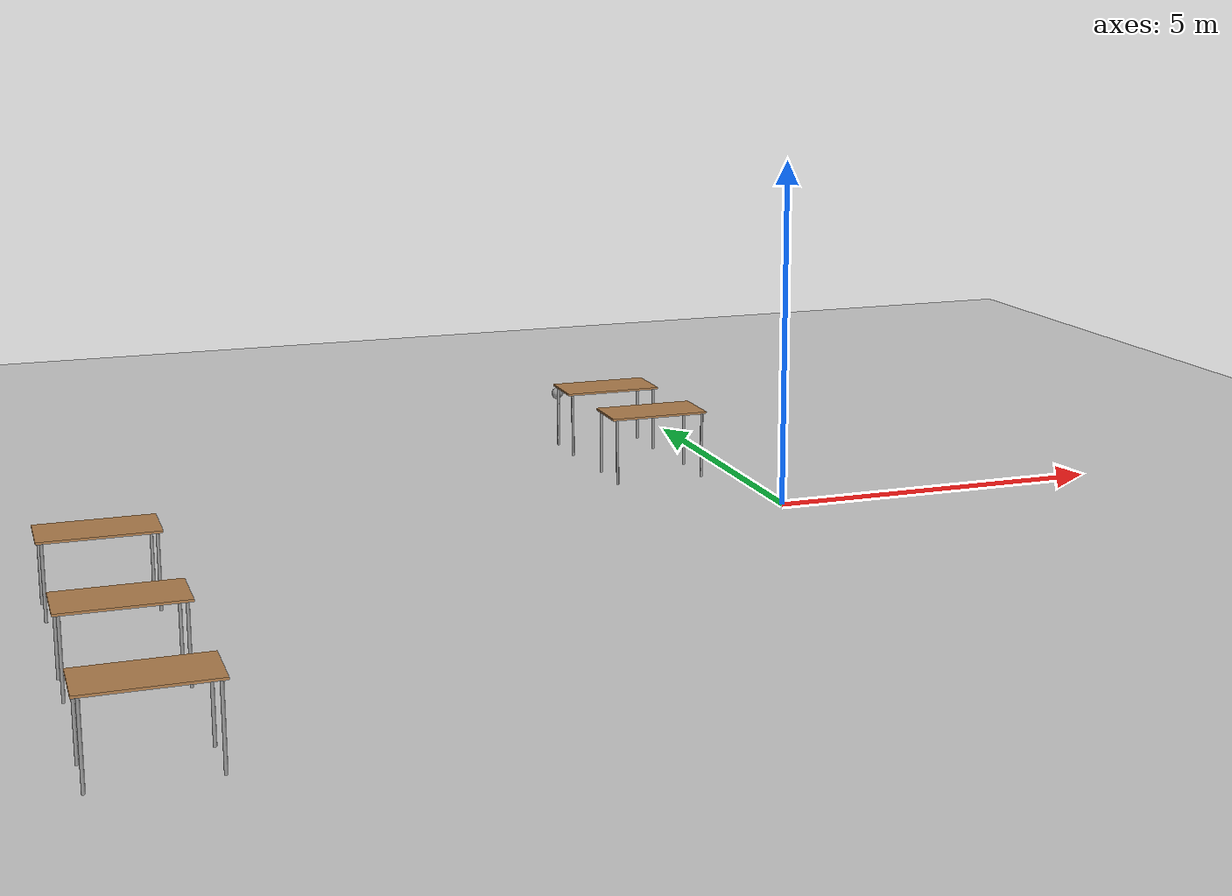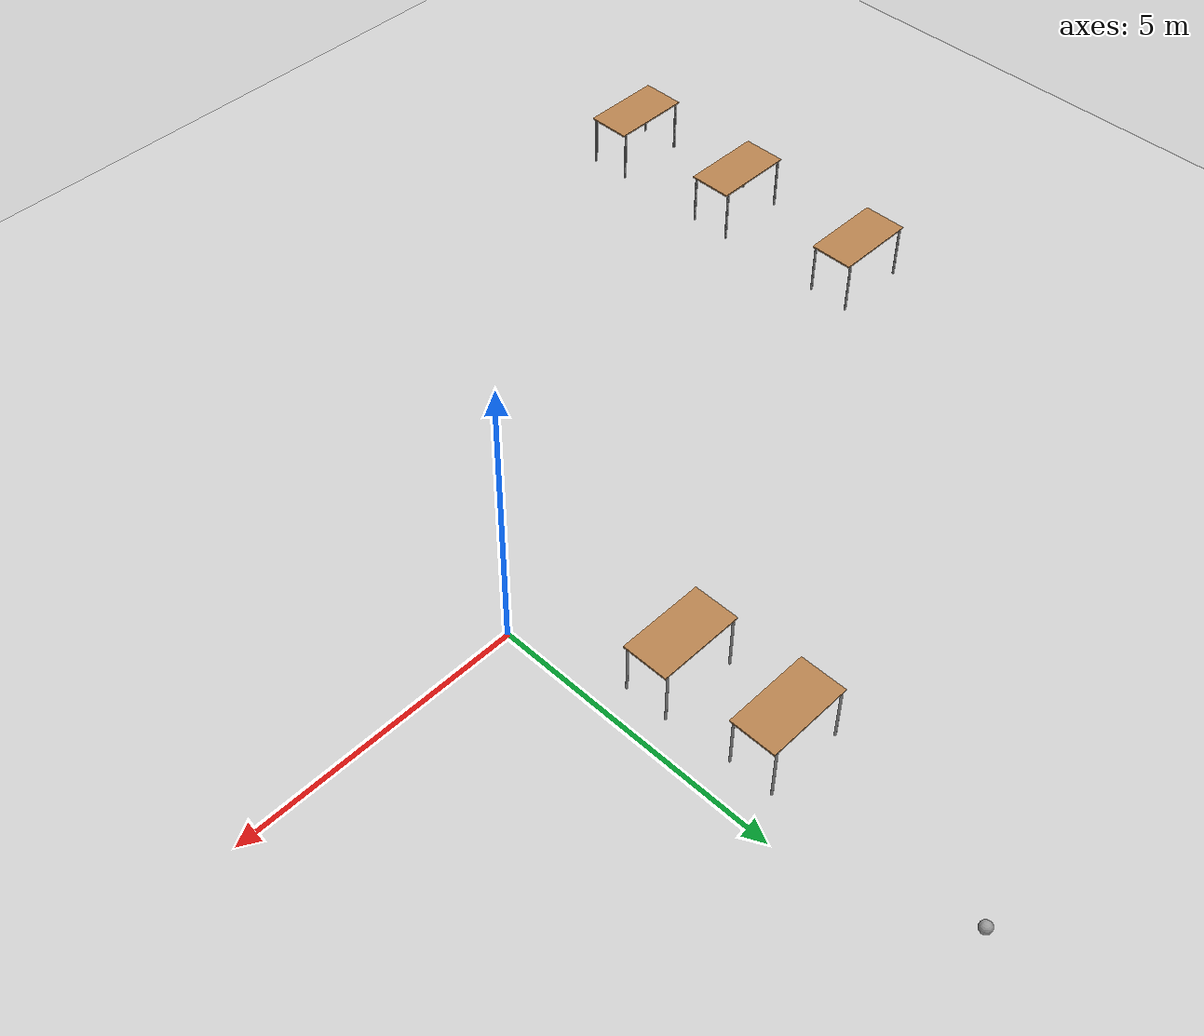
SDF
<sdf version="1.6">
 <world name="default">
  <model name="ground_plane">
   <static>1</static>
   <link name="link">
    <collision name="collision">
     <geometry><plane><normal>0 0 1</normal><size>100 100</size></plane></geometry>
     <surface><friction><ode><mu>100</mu><mu2>50</mu2></ode></friction></surface>
    </collision>
    <visual name="visual">
     <cast_shadows>0</cast_shadows>
     <geometry><plane><normal>0 0 1</normal><size>100 100</size></plane></geometry>
     <material>
      <script><uri>file://media/materials/scripts/gazebo.material</uri><name>Gazebo/Grey</name></script>
     </material>
    </visual>
   </link>
  </model>
  <model name="table_clone_0">
   <static>1</static>
   <link name="link">
    <collision name="surface">
     <pose>0 0 1 0 -0 0</pose>
     <geometry><box><size>1.5 0.8 0.03</size></box></geometry>
     <surface><friction><ode><mu>0.6</mu><mu2>0.6</mu2></ode></friction></surface>
    </collision>
    <visual name="visual1">
     <pose>0 0 1 0 -0 0</pose>
     <geometry><box><size>1.5 0.8 0.03</size></box></geometry>
     <material>
      <script><uri>file://media/materials/scripts/gazebo.material</uri><name>Gazebo/Wood</name></script>
     </material>
    </visual>
    <collision name="front_left_leg">
     <pose>0.68 0.38 0.5 0 -0 0</pose>
     <geometry><cylinder><radius>0.02</radius><length>1</length></cylinder></geometry>
    </collision>
    <visual name="front_left_leg">
     <pose>0.68 0.38 0.5 0 -0 0</pose>
     <geometry><cylinder><radius>0.02</radius><length>1</length></cylinder></geometry>
     <material>
      <script><uri>file://media/materials/scripts/gazebo.material</uri><name>Gazebo/Grey</name></script>
     </material>
    </visual>
    <collision name="front_right_leg">
     <pose>0.68 -0.38 0.5 0 -0 0</pose>
     <geometry><cylinder><radius>0.02</radius><length>1</length></cylinder></geometry>
    </collision>
    <visual name="front_right_leg">
     <pose>0.68 -0.38 0.5 0 -0 0</pose>
     <geometry><cylinder><radius>0.02</radius><length>1</length></cylinder></geometry>
     <material>
      <script><uri>file://media/materials/scripts/gazebo.material</uri><name>Gazebo/Grey</name></script>
     </material>
    </visual>
    <collision name="back_right_leg">
     <pose>-0.68 -0.38 0.5 0 -0 0</pose>
     <geometry><cylinder><radius>0.02</radius><length>1</length></cylinder></geometry>
    </collision>
    <visual name="back_right_leg">
     <pose>-0.68 -0.38 0.5 0 -0 0</pose>
     <geometry><cylinder><radius>0.02</radius><length>1</length></cylinder></geometry>
     <material>
      <script><uri>file://media/materials/scripts/gazebo.material</uri><name>Gazebo/Grey</name></script>
     </material>
    </visual>
    <collision name="back_left_leg">
     <pose>-0.68 0.38 0.5 0 -0 0</pose>
     <geometry><cylinder><radius>0.02</radius><length>1</length></cylinder></geometry>
    </collision>
    <visual name="back_left_leg">
     <pose>-0.68 0.38 0.5 0 -0 0</pose>
     <geometry><cylinder><radius>0.02</radius><length>1</length></cylinder></geometry>
     <material>
      <script><uri>file://media/materials/scripts/gazebo.material</uri><name>Gazebo/Grey</name></script>
     </material>
    </visual>
   </link>
   <pose>-1.31169 4.15802 0 0 -0 0</pose>
  </model>
  <model name="table_clone_1">
   <static>1</static>
   <link name="link">
    <collision name="surface">
     <pose>0 0 1 0 -0 0</pose>
     <geometry><box><size>1.5 0.8 0.03</size></box></geometry>
     <surface><friction><ode><mu>0.6</mu><mu2>0.6</mu2></ode></friction></surface>
    </collision>
    <visual name="visual1">
     <pose>0 0 1 0 -0 0</pose>
     <geometry><box><size>1.5 0.8 0.03</size></box></geometry>
     <material>
      <script><uri>file://media/materials/scripts/gazebo.material</uri><name>Gazebo/Wood</name></script>
     </material>
    </visual>
    <collision name="front_left_leg">
     <pose>0.68 0.38 0.5 0 -0 0</pose>
     <geometry><cylinder><radius>0.02</radius><length>1</length></cylinder></geometry>
    </collision>
    <visual name="front_left_leg">
     <pose>0.68 0.38 0.5 0 -0 0</pose>
     <geometry><cylinder><radius>0.02</radius><length>1</length></cylinder></geometry>
     <material>
      <script><uri>file://media/materials/scripts/gazebo.material</uri><name>Gazebo/Grey</name></script>
     </material>
    </visual>
    <collision name="front_right_leg">
     <pose>0.68 -0.38 0.5 0 -0 0</pose>
     <geometry><cylinder><radius>0.02</radius><length>1</length></cylinder></geometry>
    </collision>
    <visual name="front_right_leg">
     <pose>0.68 -0.38 0.5 0 -0 0</pose>
     <geometry><cylinder><radius>0.02</radius><length>1</length></cylinder></geometry>
     <material>
      <script><uri>file://media/materials/scripts/gazebo.material</uri><name>Gazebo/Grey</name></script>
     </material>
    </visual>
    <collision name="back_right_leg">
     <pose>-0.68 -0.38 0.5 0 -0 0</pose>
     <geometry><cylinder><radius>0.02</radius><length>1</length></cylinder></geometry>
    </collision>
    <visual name="back_right_leg">
     <pose>-0.68 -0.38 0.5 0 -0 0</pose>
     <geometry><cylinder><radius>0.02</radius><length>1</length></cylinder></geometry>
     <material>
      <script><uri>file://media/materials/scripts/gazebo.material</uri><name>Gazebo/Grey</name></script>
     </material>
    </visual>
    <collision name="back_left_leg">
     <pose>-0.68 0.38 0.5 0 -0 0</pose>
     <geometry><cylinder><radius>0.02</radius><length>1</length></cylinder></geometry>
    </collision>
    <visual name="back_left_leg">
     <pose>-0.68 0.38 0.5 0 -0 0</pose>
     <geometry><cylinder><radius>0.02</radius><length>1</length></cylinder></geometry>
     <material>
      <script><uri>file://media/materials/scripts/gazebo.material</uri><name>Gazebo/Grey</name></script>
     </material>
    </visual>
   </link>
   <pose>-1.21027 2.28167 0 0 -0 0</pose>
  </model>
  <model name="table_clone_5">
   <static>1</static>
   <link name="link">
    <collision name="surface">
     <pose>0 0 1 0 -0 0</pose>
     <geometry><box><size>1.5 0.8 0.03</size></box></geometry>
     <surface><friction><ode><mu>0.6</mu><mu2>0.6</mu2></ode></friction></surface>
    </collision>
    <visual name="visual1">
     <pose>0 0 1 0 -0 0</pose>
     <geometry><box><size>1.5 0.8 0.03</size></box></geometry>
     <material>
      <script><uri>file://media/materials/scripts/gazebo.material</uri><name>Gazebo/Wood</name></script>
     </material>
    </visual>
    <collision name="front_left_leg">
     <pose>0.68 0.38 0.5 0 -0 0</pose>
     <geometry><cylinder><radius>0.02</radius><length>1</length></cylinder></geometry>
    </collision>
    <visual name="front_left_leg">
     <pose>0.68 0.38 0.5 0 -0 0</pose>
     <geometry><cylinder><radius>0.02</radius><length>1</length></cylinder></geometry>
     <material>
      <script><uri>file://media/materials/scripts/gazebo.material</uri><name>Gazebo/Grey</name></script>
     </material>
    </visual>
    <collision name="front_right_leg">
     <pose>0.68 -0.38 0.5 0 -0 0</pose>
     <geometry><cylinder><radius>0.02</radius><length>1</length></cylinder></geometry>
    </collision>
    <visual name="front_right_leg">
     <pose>0.68 -0.38 0.5 0 -0 0</pose>
     <geometry><cylinder><radius>0.02</radius><length>1</length></cylinder></geometry>
     <material>
      <script><uri>file://media/materials/scripts/gazebo.material</uri><name>Gazebo/Grey</name></script>
     </material>
    </visual>
    <collision name="back_right_leg">
     <pose>-0.68 -0.38 0.5 0 -0 0</pose>
     <geometry><cylinder><radius>0.02</radius><length>1</length></cylinder></geometry>
    </collision>
    <visual name="back_right_leg">
     <pose>-0.68 -0.38 0.5 0 -0 0</pose>
     <geometry><cylinder><radius>0.02</radius><length>1</length></cylinder></geometry>
     <material>
      <script><uri>file://media/materials/scripts/gazebo.material</uri><name>Gazebo/Grey</name></script>
     </material>
    </visual>
    <collision name="back_left_leg">
     <pose>-0.68 0.38 0.5 0 -0 0</pose>
     <geometry><cylinder><radius>0.02</radius><length>1</length></cylinder></geometry>
    </collision>
    <visual name="back_left_leg">
     <pose>-0.68 0.38 0.5 0 -0 0</pose>
     <geometry><cylinder><radius>0.02</radius><length>1</length></cylinder></geometry>
     <material>
      <script><uri>file://media/materials/scripts/gazebo.material</uri><name>Gazebo/Grey</name></script>
     </material>
    </visual>
   </link>
   <pose>-9.75691 -1.38623 0 0 -0 0</pose>
  </model>
  <model name="table_clone_6">
   <static>1</static>
   <link name="link">
    <collision name="surface">
     <pose>0 0 1 0 -0 0</pose>
     <geometry><box><size>1.5 0.8 0.03</size></box></geometry>
     <surface><friction><ode><mu>0.6</mu><mu2>0.6</mu2></ode></friction></surface>
    </collision>
    <visual name="visual1">
     <pose>0 0 1 0 -0 0</pose>
     <geometry><box><size>1.5 0.8 0.03</size></box></geometry>
     <material>
      <script><uri>file://media/materials/scripts/gazebo.material</uri><name>Gazebo/Wood</name></script>
     </material>
    </visual>
    <collision name="front_left_leg">
     <pose>0.68 0.38 0.5 0 -0 0</pose>
     <geometry><cylinder><radius>0.02</radius><length>1</length></cylinder></geometry>
    </collision>
    <visual name="front_left_leg">
     <pose>0.68 0.38 0.5 0 -0 0</pose>
     <geometry><cylinder><radius>0.02</radius><length>1</length></cylinder></geometry>
     <material>
      <script><uri>file://media/materials/scripts/gazebo.material</uri><name>Gazebo/Grey</name></script>
     </material>
    </visual>
    <collision name="front_right_leg">
     <pose>0.68 -0.38 0.5 0 -0 0</pose>
     <geometry><cylinder><radius>0.02</radius><length>1</length></cylinder></geometry>
    </collision>
    <visual name="front_right_leg">
     <pose>0.68 -0.38 0.5 0 -0 0</pose>
     <geometry><cylinder><radius>0.02</radius><length>1</length></cylinder></geometry>
     <material>
      <script><uri>file://media/materials/scripts/gazebo.material</uri><name>Gazebo/Grey</name></script>
     </material>
    </visual>
    <collision name="back_right_leg">
     <pose>-0.68 -0.38 0.5 0 -0 0</pose>
     <geometry><cylinder><radius>0.02</radius><length>1</length></cylinder></geometry>
    </collision>
    <visual name="back_right_leg">
     <pose>-0.68 -0.38 0.5 0 -0 0</pose>
     <geometry><cylinder><radius>0.02</radius><length>1</length></cylinder></geometry>
     <material>
      <script><uri>file://media/materials/scripts/gazebo.material</uri><name>Gazebo/Grey</name></script>
     </material>
    </visual>
    <collision name="back_left_leg">
     <pose>-0.68 0.38 0.5 0 -0 0</pose>
     <geometry><cylinder><radius>0.02</radius><length>1</length></cylinder></geometry>
    </collision>
    <visual name="back_left_leg">
     <pose>-0.68 0.38 0.5 0 -0 0</pose>
     <geometry><cylinder><radius>0.02</radius><length>1</length></cylinder></geometry>
     <material>
      <script><uri>file://media/materials/scripts/gazebo.material</uri><name>Gazebo/Grey</name></script>
     </material>
    </visual>
   </link>
   <pose>-9.75691 -4.17538 0 0 -0 0</pose>
  </model>
  <model name="table_clone_7">
   <static>1</static>
   <link name="link">
    <collision name="surface">
     <pose>0 0 1 0 -0 0</pose>
     <geometry><box><size>1.5 0.8 0.03</size></box></geometry>
     <surface><friction><ode><mu>0.6</mu><mu2>0.6</mu2></ode></friction></surface>
    </collision>
    <visual name="visual1">
     <pose>0 0 1 0 -0 0</pose>
     <geometry><box><size>1.5 0.8 0.03</size></box></geometry>
     <material>
      <script><uri>file://media/materials/scripts/gazebo.material</uri><name>Gazebo/Wood</name></script>
     </material>
    </visual>
    <collision name="front_left_leg">
     <pose>0.68 0.38 0.5 0 -0 0</pose>
     <geometry><cylinder><radius>0.02</radius><length>1</length></cylinder></geometry>
    </collision>
    <visual name="front_left_leg">
     <pose>0.68 0.38 0.5 0 -0 0</pose>
     <geometry><cylinder><radius>0.02</radius><length>1</length></cylinder></geometry>
     <material>
      <script><uri>file://media/materials/scripts/gazebo.material</uri><name>Gazebo/Grey</name></script>
     </material>
    </visual>
    <collision name="front_right_leg">
     <pose>0.68 -0.38 0.5 0 -0 0</pose>
     <geometry><cylinder><radius>0.02</radius><length>1</length></cylinder></geometry>
    </collision>
    <visual name="front_right_leg">
     <pose>0.68 -0.38 0.5 0 -0 0</pose>
     <geometry><cylinder><radius>0.02</radius><length>1</length></cylinder></geometry>
     <material>
      <script><uri>file://media/materials/scripts/gazebo.material</uri><name>Gazebo/Grey</name></script>
     </material>
    </visual>
    <collision name="back_right_leg">
     <pose>-0.68 -0.38 0.5 0 -0 0</pose>
     <geometry><cylinder><radius>0.02</radius><length>1</length></cylinder></geometry>
    </collision>
    <visual name="back_right_leg">
     <pose>-0.68 -0.38 0.5 0 -0 0</pose>
     <geometry><cylinder><radius>0.02</radius><length>1</length></cylinder></geometry>
     <material>
      <script><uri>file://media/materials/scripts/gazebo.material</uri><name>Gazebo/Grey</name></script>
     </material>
    </visual>
    <collision name="back_left_leg">
     <pose>-0.68 0.38 0.5 0 -0 0</pose>
     <geometry><cylinder><radius>0.02</radius><length>1</length></cylinder></geometry>
    </collision>
    <visual name="back_left_leg">
     <pose>-0.68 0.38 0.5 0 -0 0</pose>
     <geometry><cylinder><radius>0.02</radius><length>1</length></cylinder></geometry>
     <material>
      <script><uri>file://media/materials/scripts/gazebo.material</uri><name>Gazebo/Grey</name></script>
     </material>
    </visual>
   </link>
   <pose>-9.75691 -6.71099 0 0 -0 0</pose>
  </model>
  <model name="my_ball">
   <link name="link">
    <inertial>
     <mass>1</mass>
     <inertia><ixx>0.1</ixx><ixy>0</ixy><ixz>0</ixz><iyy>0.1</iyy><iyz>0</iyz><izz>0.1</izz></inertia>
    </inertial>
    <visual name="visual">
     <geometry><sphere><radius>0.1</radius></sphere></geometry>
     <material>
      <script><name>Gazebo/Grey</name><uri>file://media/materials/scripts/gazebo.material</uri></script>
      <shader type="vertex"><normal_map>__default__</normal_map></shader>
      <ambient>1 1 1 1</ambient>
      <diffuse>1 1 1 1</diffuse>
      <specular>1 1 1 1</specular>
      <emissive>1 1 1 1</emissive>
     </material>
    </visual>
    <collision name="collision">
     <geometry><sphere><radius>0.1</radius></sphere></geometry>
     <surface>
      <friction>
       <ode><mu>1</mu><mu2>1</mu2><fdir1>0 0 0</fdir1><slip1>0</slip1><slip2>0</slip2></ode>
       <torsional>
        <coefficient>1</coefficient>
        <patch_radius>0</patch_radius>
        <surface_radius>0</surface_radius>
        <use_patch_radius>1</use_patch_radius>
        <ode><slip>0</slip></ode>
       </torsional>
      </friction>
      <bounce><restitution_coefficient>0</restitution_coefficient><threshold>1e+06</threshold></bounce>
      <contact>
       <collide_without_contact>0</collide_without_contact>
       <collide_without_contact_bitmask>1</collide_without_contact_bitmask>
       <collide_bitmask>1</collide_bitmask>
       <ode>
        <soft_cfm>0</soft_cfm>
        <soft_erp>0.2</soft_erp>
        <kp>1e+13</kp>
        <kd>1</kd>
        <max_vel>0.01</max_vel>
        <min_depth>0</min_depth>
       </ode>
       <bullet>
        <split_impulse>1</split_impulse>
        <split_impulse_penetration_threshold>-0.01</split_impulse_penetration_threshold>
        <soft_cfm>0</soft_cfm>
        <soft_erp>0.2</soft_erp>
        <kp>1e+13</kp>
        <kd>1</kd>
       </bullet>
      </contact>
     </surface>
    </collision>
   </link>
   <static>0</static>
   <pose>-0.983791 7.81804 0.1 0 -0 0</pose>
  </model>
 </world>
</sdf>
